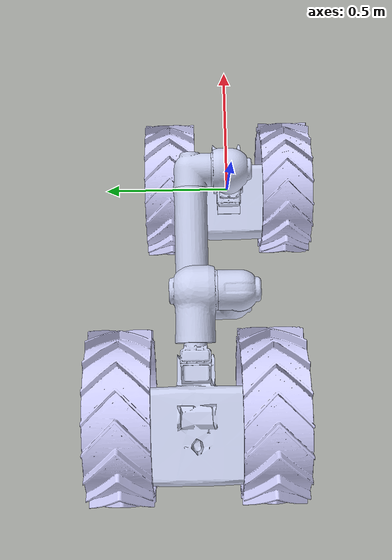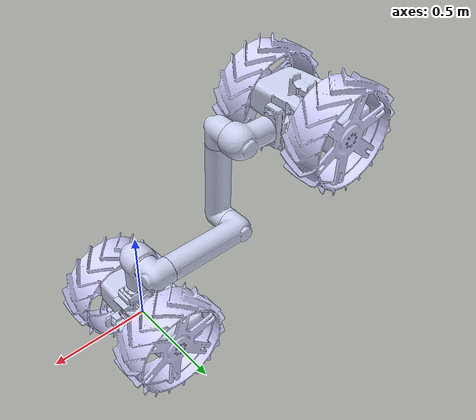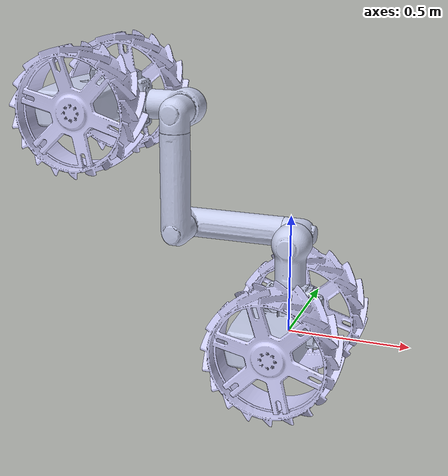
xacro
<?xml version="1.0" encoding="utf-8"?>
<robot name="hero_vehicle" xmlns:xacro="http://www.ros.org/wiki/xacro">
  <xacro:include filename="hero_vehicle_macro.xacro"></xacro:include>
  <xacro:arg default="1" name="bridge"></xacro:arg>
  <xacro:arg default="11" name="front_wheel"></xacro:arg>
  <xacro:arg default="12" name="back_wheel"></xacro:arg>
  <xacro:property name="bridge_value" value="$(arg bridge)"></xacro:property>
  <xacro:property name="front_value" value="$(arg front_wheel)"></xacro:property>
  <xacro:property name="back_value" value="$(arg back_wheel)"></xacro:property>
  <xacro:vehicle bridge_limb="${bridge_value}" wheel_back="${back_value}" wheel_front="${front_value}"></xacro:vehicle>
</robot>

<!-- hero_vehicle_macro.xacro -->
<robot name="hero_vehicle" xmlns:xacro="http://www.ros.org/wiki/xacro">
  <xacro:macro name="vehicle" params="bridge_limb:=1 wheel_front:=11 wheel_back:=12 ">

  <xacro:property name="wheel_front_pre" value="wheel${wheel_front}_"></xacro:property>
  <xacro:property name="wheel_back_pre" value="wheel${wheel_back}_"></xacro:property>

    <xacro:include filename="hero_7dof_macro.xacro"></xacro:include>
    <xacro:get_hero prefix="leg${bridge_limb}"></xacro:get_hero>

    <xacro:include filename="hero_wheel_macro.xacro"></xacro:include>
    <xacro:add_wheel prefix="${wheel_front_pre}"></xacro:add_wheel>
    <xacro:add_wheel prefix="${wheel_back_pre}"></xacro:add_wheel>

  <link name="base_link"></link>
  <xacro:include filename="hero_wheel_macro.xacro"></xacro:include>
  <joint name="bfix" type="fixed">
  <origin rpy="0 ${- pi/2} ${pi}" xyz="0 0 0"></origin>
    <parent link="base_link"></parent>
    <child link="base_link45"></child>
  </joint>
  <link name="base_link45"></link>
  <joint name="bfixstraight" type="fixed">
    <origin rpy="0 0 0" xyz="0 0 0.160"></origin>
    <parent link="base_link45"></parent>
    <child link="${wheel_front_pre}in"></child>
  </joint>
  <joint name="${wheel_back_pre}fix1" type="fixed">
    <origin rpy="0 0 ${0*pi}" xyz="0 0 0"></origin>
    <parent link="leg${bridge_limb}gripper2"></parent>
    <child link="${wheel_back_pre}in"></child>
  </joint>
  <link name="${wheel_back_pre}c45"></link>
  <joint name="fix45${wheel_back_pre}" type="fixed">
    <origin rpy="${0} 0 0" xyz="0 0 0"></origin>
    <parent link="${wheel_back_pre}center"></parent>
    <child link="${wheel_back_pre}c45"></child>
  </joint>
  <joint name="${wheel_front_pre}fix_out" type="fixed">
    <origin rpy="0 0 0" xyz="0 0 0"></origin>
    <parent link="${wheel_front_pre}out"></parent>
    <child link="leg${bridge_limb}gripper1"></child>
  </joint>
  </xacro:macro>
</robot>

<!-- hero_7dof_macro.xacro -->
<robot xmlns:xacro="http://www.ros.org/wiki/xacro" name="hero_7dof_arm">

    <xacro:property name="ThisPackage" value="ros2_m_hero_pkg" />
    <xacro:property name="MeshPath" value="package://${ThisPackage}/meshes/hero_7dof_arm/optimised" />

    <xacro:property name="mesh_extension" value="STL" />

    <xacro:macro name="get_hero" params="prefix:=leg1">

    <xacro:property name="max_vel" value="0.15" />

    <!-- PREFIX BELOW IS FOR TESTING. TODO: REMOVE -->

    <link name="${prefix}gripper1">
    </link>

    <joint name="${prefix}gripper1_fixed_joint" type="fixed">
    <origin xyz="0 0 0.075" rpy="${pi} 0 ${0}" />
        <parent link="${prefix}gripper1" />
        <child link="${prefix}gripper1_base"/>
    </joint>

    <link name="${prefix}gripper1_base">
        <inertial>
            <origin xyz="0 0 0.034092" rpy="0 0 0" />
            <mass value="1" />
            <inertia ixx="0.00037818" ixy="-7.3501E-08" ixz="9.8348E-07" iyy="0.0011423" iyz="1.9396E-08" izz="0.0012608" />
        </inertial>
        <visual>
            <origin xyz="0 0 0.01" rpy="0 0 0" />
            <geometry>
                <mesh filename="${MeshPath}/gripper_base.${mesh_extension}" />
            </geometry>
            <material name="">
                <color rgba="0.79216 0.81961 0.93333 1" />
            </material>
        </visual>
        <collision>
            <origin xyz="0 0 0.01" rpy="0 0 0" />
            <geometry>
                <mesh filename="${MeshPath}/gripper_base.${mesh_extension}" />
            </geometry>
        </collision>
    </link>
    <link name="${prefix}gripper1_jaw_left">
        <inertial>
            <origin xyz="0.0085205 -0.015122 -0.048716" rpy="0 0 0" />
            <mass value="0.57" />
            <inertia ixx="0.000401" ixy="3.9995E-05" ixz="8.1004E-05" iyy="0.00040867" iyz="-6.6046E-05" izz="0.0002301" />
        </inertial>
        <visual>
            <origin xyz="0 0 0" rpy="0 0 0" />
            <geometry>
                <mesh filename="${MeshPath}/gripper_jaw_left.${mesh_extension}" />
            </geometry>
            <material name="">
                <color rgba="0.79216 0.81961 0.93333 1" />
            </material>
        </visual>
        <collision>
            <origin xyz="0 0 0" rpy="0 0 0" />
            <geometry>
                <mesh filename="${MeshPath}/gripper_jaw_left.${mesh_extension}" />
            </geometry>
        </collision>
    </link>
    <joint name="${prefix}grip1" type="prismatic">
        <origin xyz="0 -0.025 0.075" rpy="${-pi/2} ${-pi/2} ${-pi/2}" />
        <parent link="${prefix}gripper1_base" />
        <child link="${prefix}gripper1_jaw_left" />
        <axis xyz="0 0 -1" />
        <limit lower="-9999" upper="9999" effort="9999" velocity="${max_vel}" />
    </joint>

    <link name="${prefix}gripper1_jaw_right">
        <inertial>
            <origin xyz="0.0084246 -0.015024 -0.048812" rpy="0 0 0" />
            <mass value="0.57" />
            <inertia ixx="0.00040173" ixy="4.0342E-05" ixz="8.0663E-05" iyy="0.00040938" iyz="-6.5693E-05" izz="0.00023081" />
        </inertial>
        <visual>
            <origin xyz="0 0 0" rpy="0 0 0" />
            <geometry>
                <mesh filename="${MeshPath}/gripper_jaw_right.${mesh_extension}" />
            </geometry>
            <material name="">
                <color rgba="0.79216 0.81961 0.93333 1" />
            </material>
        </visual>
        <collision>
            <origin xyz="0 0 0" rpy="0 0 0" />
            <geometry>
                <mesh filename="${MeshPath}/gripper_jaw_right.${mesh_extension}" />
            </geometry>
        </collision>
    </link>
    <joint name="${prefix}grip1bis" type="prismatic">
        <origin xyz="0 0.025 0.075" rpy="${pi/2} ${-pi/2} ${-pi/2}" />
        <parent link="${prefix}gripper1_base" />
        <child link="${prefix}gripper1_jaw_right" />
        <axis xyz="0 0 -1" />
        <limit lower="-9999" upper="9999" effort="9999" velocity="${max_vel}" />
        <mimic joint="${prefix}grip1" multiplier="1" offset="0" />
    </joint>

    <link name="${prefix}link1">
        <inertial>
            <origin xyz="0 -0.026961 0.07079" rpy="0 0 0" />
            <mass value="2.28" />
            <inertia ixx="0.00036861" ixy="-1.2304E-10" ixz="-1.7786E-19" iyy="0.00051212" iyz="5.2003E-19" izz="0.00058121" />
        </inertial>
        <visual>
            <origin xyz="0 0 0" rpy="0 0 0" />
            <geometry>
                <mesh filename="${MeshPath}/link1.${mesh_extension}" />
            </geometry>
            <material name="">
                <color rgba="0.79216 0.81961 0.93333 1" />
            </material>
        </visual>
        <collision>
            <origin xyz="0 0 0" rpy="0 0 0" />
            <geometry>
                <mesh filename="${MeshPath}/link1.${mesh_extension}" />
            </geometry>
        </collision>
    </link>
    <joint name="${prefix}joint1" type="continuous">
    <origin xyz="0 0 0.011" rpy="${pi} 0 ${0}" />
        <parent link="${prefix}gripper1_base" />
        <child link="${prefix}link1" />
        <axis xyz="0 0 1" />
        <limit lower="-9999" upper="9999" effort="9999" velocity="${max_vel}" />
    </joint>
    <link name="${prefix}link2">
        <inertial>
            <origin xyz="0.032078 0 0.041065" rpy="0 0 0" />
            <mass value="1.93" />
            <inertia ixx="0.00044657" ixy="7.7738E-21" ixz="2.4867E-23" iyy="0.00030306" iyz="4.0296E-20" izz="0.00045568" />
        </inertial>
        <visual>
            <origin xyz="0 0 0" rpy="0 0 0" />
            <geometry>
                <mesh filename="${MeshPath}/link2.${mesh_extension}" />
            </geometry>
            <material name="">
                <color rgba="0.79216 0.81961 0.93333 1" />
            </material>
        </visual>
        <collision>
            <origin xyz="0 0 0" rpy="0 0 0" />
            <geometry>
                <mesh filename="${MeshPath}/link2.${mesh_extension}" />
            </geometry>
        </collision>
    </link>
    <joint name="${prefix}joint2" type="continuous">
        <origin xyz="0 -0.0729017560494423 0.1646" rpy="${pi/2} 0 0" />
        <parent link="${prefix}link1" />
        <child link="${prefix}link2" />
        <axis xyz="0 0 1" />
        <limit lower="-9999" upper="9999" effort="9999" velocity="${max_vel}" />
    </joint>
    <link name="${prefix}link3">
        <inertial>
            <origin xyz="0 0.032 0.21559" rpy="0 0 0" />
            <mass value="4.82" />
            <inertia ixx="0.00043746" ixy="-6.0916E-09" ixz="5.7927E-15" iyy="0.00064389" iyz="-1.5683E-11" izz="0.00065006" />
        </inertial>
        <visual>
            <origin xyz="0 0 0" rpy="0 0 0" />
            <geometry>
                <mesh filename="${MeshPath}/link3.${mesh_extension}" />
            </geometry>
            <material name="">
                <color rgba="0.79216 0.81961 0.93333 1" />
            </material>
        </visual>
        <collision>
            <origin xyz="0 0 0" rpy="0 0 0" />
            <geometry>
                <mesh filename="${MeshPath}/link3.${mesh_extension}" />
            </geometry>
        </collision>
    </link>
    <joint name="${prefix}joint3" type="continuous">
        <origin xyz="0.0728992993685218 0 0.0794000460598" rpy="${-pi/2} 0 ${-pi/2}" />
        <parent link="${prefix}link2" />
        <child link="${prefix}link3" />
        <axis xyz="0 0 1" />
        <limit lower="-9999" upper="9999" effort="9999" velocity="${max_vel}" />
    </joint>
    <link name="${prefix}link4">
        <inertial>
            <origin xyz="0 0.21057 -0.043825" rpy="0 0 0" />
            <mass value="4.41" />
            <inertia ixx="0.00044447" ixy="7.218E-10" ixz="2.0385E-10" iyy="0.00065707" iyz="2.1592E-11" izz="0.00065707" />
        </inertial>
        <visual>
            <origin xyz="0 0 0" rpy="0 0 0" />
            <geometry>
                <mesh filename="${MeshPath}/link4.${mesh_extension}" />
            </geometry>
            <material name="">
                <color rgba="0.79216 0.81961 0.93333 1" />
            </material>
        </visual>
        <collision>
            <origin xyz="0 0 0" rpy="0 0 0" />
            <geometry>
                <mesh filename="${MeshPath}/link4.${mesh_extension}" />
            </geometry>
        </collision>
    </link>
    <joint name="${prefix}joint4" type="continuous">
        <origin xyz="0 0.073 0.43" rpy="${pi/2} ${-pi/2} 0" />
        <parent link="${prefix}link3" />
        <child link="${prefix}link4" />
        <axis xyz="0 0 -1" />
        <limit lower="-9999" upper="9999" effort="9999" velocity="${max_vel}" />
    </joint>
    <link name="${prefix}link5">
        <inertial>
            <origin xyz="0 -0.032079 0.041064" rpy="0 0 0" />
            <mass value="1.93" />
            <inertia ixx="0.00030306" ixy="-1.5056E-14" ixz="5.1818E-10" iyy="0.00044657" iyz="-2.6967E-10" izz="0.00045568" />
        </inertial>
        <visual>
            <origin xyz="0 0 0" rpy="0 0 0" />
            <geometry>
                <mesh filename="${MeshPath}/link5.${mesh_extension}" />
            </geometry>
            <material name="">
                <color rgba="0.79216 0.81961 0.93333 1" />
            </material>
        </visual>
        <collision>
            <origin xyz="0 0 0" rpy="0 0 0" />
            <geometry>
                <mesh filename="${MeshPath}/link5.${mesh_extension}" />
            </geometry>
        </collision>
    </link>
    <joint name="${prefix}joint5" type="continuous">
        <origin xyz="0 0.43 -0.0794" rpy="${-pi/2} 0 0" />
        <parent link="${prefix}link4" />
        <child link="${prefix}link5" />
        <axis xyz="0 0 1" />
        <limit lower="-9999" upper="9999" effort="9999" velocity="${max_vel}" />
    </joint>
    <link name="${prefix}link6">
        <inertial>
            <origin xyz="0.09381 0 0.045941" rpy="0 0 0" />
            <mass value="2.28" />
            <inertia ixx="0.00058121" ixy="1.0036E-09" ixz="1.3853E-16" iyy="0.00036861" iyz="3.8298E-21" izz="0.00051212" />
        </inertial>
        <visual>
            <origin xyz="0 0 0" rpy="0 0 0" />
            <geometry>
                <mesh filename="${MeshPath}/link6.${mesh_extension}" />
            </geometry>
            <material name="">
                <color rgba="0.79216 0.81961 0.93333 1" />
            </material>
        </visual>
        <collision>
            <origin xyz="0 0 0" rpy="0 0 0" />
            <geometry>
                <mesh filename="${MeshPath}/link6.${mesh_extension}" />
            </geometry>
        </collision>
    </link>
    <joint name="${prefix}joint6" type="continuous">
        <origin xyz="0 -0.073 0.0793978875028697" rpy="${pi/2} 0 0" />
        <parent link="${prefix}link5" />
        <child link="${prefix}link6" />
        <axis xyz="0 0 1" />
        <limit lower="-9999" upper="9999" effort="9999" velocity="${max_vel}" />
    </joint>
    <joint name="${prefix}joint7" type="continuous">
    <origin xyz="0.1646 0 0.072902" rpy="${-pi/2} 0 ${-pi/2}" />
        <parent link="${prefix}link6" />
        <child link="${prefix}gripper2_base" />
        <axis xyz="0 0 1" />
        <limit lower="-9999" upper="9999" effort="9999" velocity="${max_vel}" />
    </joint>
    <link name="${prefix}gripper2_base">
        <inertial>
            <origin xyz="0 0 0.034092" rpy="0 0 0" />
            <mass value="1" />
            <inertia ixx="0.00037818" ixy="-7.3501E-08" ixz="9.8348E-07" iyy="0.0011423" iyz="1.9396E-08" izz="0.0012608" />
        </inertial>
        <visual>
            <origin xyz="0 0 0" rpy="0 0 0" />
            <geometry>
                <mesh filename="${MeshPath}/gripper_base.${mesh_extension}" />
            </geometry>
            <material name="">
                <color rgba="0.79216 0.81961 0.93333 1" />
            </material>
        </visual>
        <collision>
            <origin xyz="0 0 0" rpy="0 0 0" />
            <geometry>
                <mesh filename="${MeshPath}/gripper_base.${mesh_extension}" />
            </geometry>
        </collision>
    </link>
    <link name="${prefix}gripper2_jaw_left">
        <inertial>
            <origin xyz="0.0085205 -0.015122 -0.048716" rpy="0 0 0" />
            <mass value="0.57" />
            <inertia ixx="0.000401" ixy="3.9995E-05" ixz="8.1004E-05" iyy="0.00040867" iyz="-6.6046E-05" izz="0.0002301" />
        </inertial>
        <visual>
            <origin xyz="0 0 0" rpy="0 0 0" />
            <geometry>
                <mesh filename="${MeshPath}/gripper_jaw_left.${mesh_extension}" />
            </geometry>
            <material name="">
                <color rgba="0.79216 0.81961 0.93333 1" />
            </material>
        </visual>
        <collision>
            <origin xyz="0 0 0" rpy="0 0 0" />
            <geometry>
                <mesh filename="${MeshPath}/gripper_jaw_left.${mesh_extension}" />
            </geometry>
        </collision>
    </link>
    <joint name="${prefix}grip2" type="prismatic">
        <origin xyz="0 -0.025 0.065" rpy="${-pi/2} ${-pi/2} ${-pi/2}" />
        <parent link="${prefix}gripper2_base" />
        <child link="${prefix}gripper2_jaw_left" />
        <axis xyz="0 0 -1" />
        <limit lower="-9999" upper="9999" effort="9999" velocity="${max_vel}" />
    </joint>
    <link name="${prefix}gripper2_jaw_right">
        <inertial>
            <origin xyz="0.0084246 -0.015024 -0.048812" rpy="0 0 0" />
            <mass value="0.57" />
            <inertia ixx="0.00040173" ixy="4.0342E-05" ixz="8.0663E-05" iyy="0.00040938" iyz="-6.5693E-05" izz="0.00023081" />
        </inertial>
        <visual>
            <origin xyz="0 0 0" rpy="0 0 0" />
            <geometry>
                <mesh filename="${MeshPath}/gripper_jaw_right.${mesh_extension}" />
            </geometry>
            <material name="">
                <color rgba="0.79216 0.81961 0.93333 1" />
            </material>
        </visual>
        <collision>
            <origin xyz="0 0 0" rpy="0 0 0" />
            <geometry>
                <mesh filename="${MeshPath}/gripper_jaw_right.${mesh_extension}" />
            </geometry>
        </collision>
    </link>
    <joint name="${prefix}grip2bis" type="prismatic">
        <origin xyz="0 0.025 0.065" rpy="${pi/2} ${-pi/2} ${-pi/2}" />
        <parent link="${prefix}gripper2_base" />
        <child link="${prefix}gripper2_jaw_right" />
        <axis xyz="0 0 -1" />
        <limit lower="-9999" upper="9999" effort="9999" velocity="${max_vel}" />
        <mimic joint="${prefix}grip2" multiplier="1" offset="0" />
    </joint>
    <link name="${prefix}gripper2">
    </link>

    <joint name="${prefix}gripper2_fixed_joint" type="fixed">
    <origin xyz="0 0 0.065" rpy="0 ${pi} ${0}" />
        <parent link="${prefix}gripper2_base" />
        <child link="${prefix}gripper2" />
    </joint>

    <link name="${prefix}gripper2_straight">
    </link>
    <joint name="${prefix}gripper2_fix_to_straight" type="fixed">
    <origin xyz="0 0 0" rpy="0 ${pi/2} 0" />
        <parent link="${prefix}gripper2" />
        <child link="${prefix}gripper2_straight" />
    </joint>

    </xacro:macro>
</robot>

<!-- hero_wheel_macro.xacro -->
<robot xmlns:xacro="http://www.ros.org/wiki/xacro" name="hero_wheel_module">

  <xacro:macro name="add_wheel" params="prefix:=11">

  <xacro:property name="ThisPackage" value="ros2_m_hero_pkg" />
  <xacro:property name="MeshPath" value="package://${ThisPackage}/meshes/hero_wheel_module/raw" />

  <xacro:property name="mesh_extension" value="STL" />

  <!-- PREFIX BELOW IS FOR TESTING. TODO: REMOVE -->

  <link name="${prefix}body">
    <inertial>
      <origin xyz="0.056173 0 -0.057088" rpy="0 0 0" />
      <mass value="10.64" />
      <inertia ixx="0.0025681" ixy="-4.8803E-05" ixz="-0.0005558" iyy="0.0040357" iyz="-4.8753E-05" izz="0.0025657" />
    </inertial>
    <visual>
      <origin xyz="0 0 0" rpy="0 0 0" />
      <geometry>
        <mesh filename="${MeshPath}/base_link.${mesh_extension}"/>
      </geometry>
      <material name="">
        <color rgba="0.79216 0.81961 0.93333 1" />
      </material>
    </visual>
    <collision>
      <origin xyz="0 0 0" rpy="0 0 0" />
      <geometry>
        <mesh filename="${MeshPath}/base_link.${mesh_extension}" />
      </geometry>
    </collision>
  </link>
  <link name="${prefix}left">
    <inertial>
      <origin xyz="0 0 -0.044735" rpy="0 0 0" />
      <mass value="5.7" />
      <inertia ixx="0.10868" ixy="-0.0011835" ixz="9.2131E-05" iyy="0.093396" iyz="0.0011967" izz="0.16995" />
    </inertial>
    <visual>
      <origin xyz="0 0 0" rpy="0 0 0" />
      <geometry>
        <mesh filename="${MeshPath}/wheel_left.${mesh_extension}" />
      </geometry>
      <material name="">
        <color rgba="0.82353 0.82353 1 1" />
      </material>
    </visual>
    <collision>
      <origin xyz="0 0 0" rpy="0 0 0" />
      <geometry>
        <mesh filename="${MeshPath}/wheel_left.${mesh_extension}" />
      </geometry>
    </collision>
  </link>
  <joint name="${prefix}left_joint" type="continuous">
  <origin xyz="0 -0.286 0" rpy="${pi/2} 0 0" />
    <parent link="${prefix}body" />
    <child link="${prefix}left" />
    <axis xyz="0 0 1" />
  </joint>
  <link name="${prefix}right">
    <inertial>
      <origin xyz="0 0 -0.044734" rpy="0 0 0" />
      <mass value="5.7" />
      <inertia ixx="0.089717" ixy="-1.4747E-08" ixz="6.8276E-09" iyy="0.089717" iyz="1.1155E-08" izz="0.14746" />
    </inertial>
    <visual>
      <origin xyz="0 0 0" rpy="0 0 0" />
      <geometry>
        <mesh filename="${MeshPath}/wheel_right.${mesh_extension}" />
      </geometry>
      <material name="">
        <color rgba="0.82353 0.82353 1 1" />
      </material>
    </visual>
    <collision>
      <origin xyz="0 0 0" rpy="0 0 0" />
      <geometry>
        <mesh filename="${MeshPath}/wheel_right.${mesh_extension}" />
      </geometry>
    </collision>
  </link>
  <joint name="${prefix}right_joint" type="continuous">
    <origin xyz="0 0.286 0" rpy="${-pi/2} 0 0" />
    <parent link="${prefix}body" />
    <child link="${prefix}right" />
    <axis xyz="0 0 1" />
  </joint>

  <link name="${prefix}in"/>
  <link name="${prefix}center"/>
  <link name="${prefix}out"/>

  <joint name="${prefix}fix" type="fixed">
  <origin xyz="0 0 -0.16" rpy="0 ${pi/4} ${0}"/>
    <parent link="${prefix}in"/>
    <child link="${prefix}body"/>
  </joint>

  <joint name="${prefix}cent_fix" type="fixed">
  <origin xyz="0 0 -0.16" rpy="0 0 0"/>
    <parent link="${prefix}in"/>
    <child link="${prefix}center"/>
  </joint>

  <joint name="${prefix}cen2out" type="fixed">
  <origin xyz="0.15 0 0" rpy="0 ${pi/2} 0"/>
    <parent link="${prefix}center"/>
    <child link="${prefix}out"/>
    <axis xyz="0 0 0"/>
  </joint>
  </xacro:macro>
</robot>
